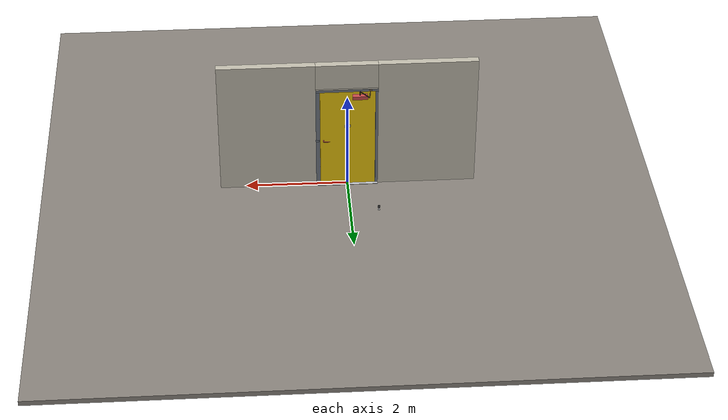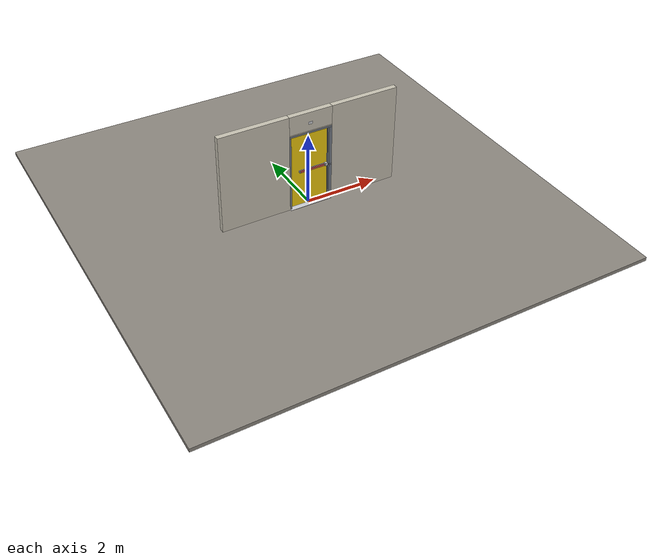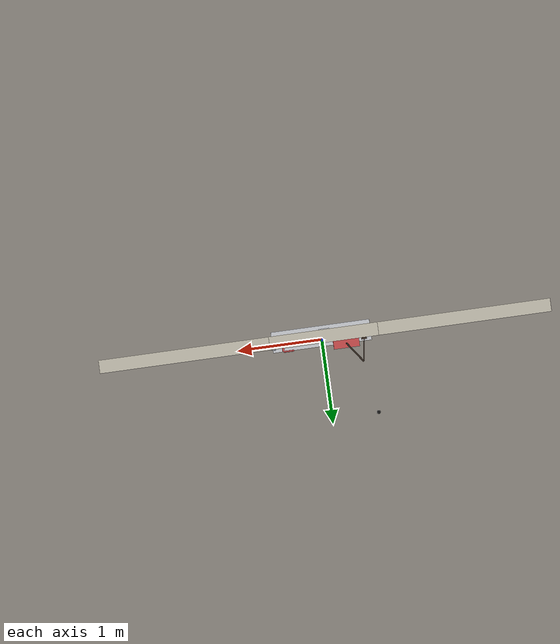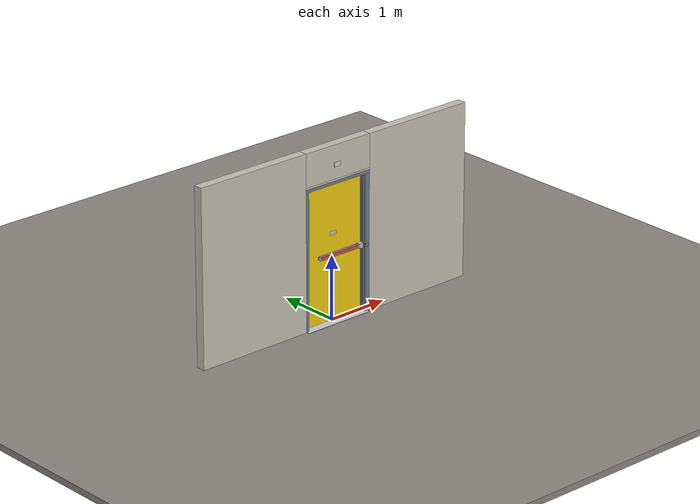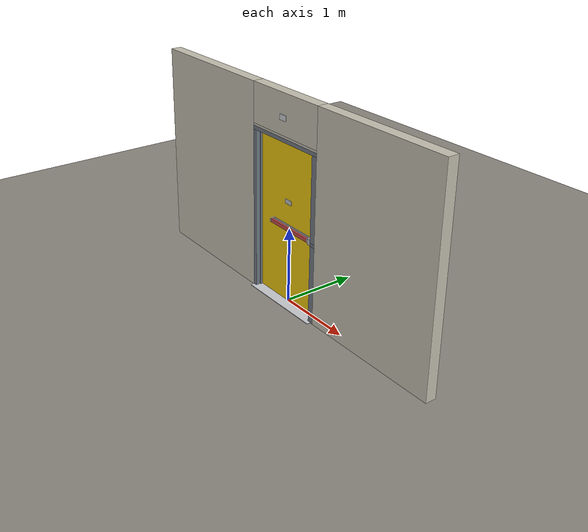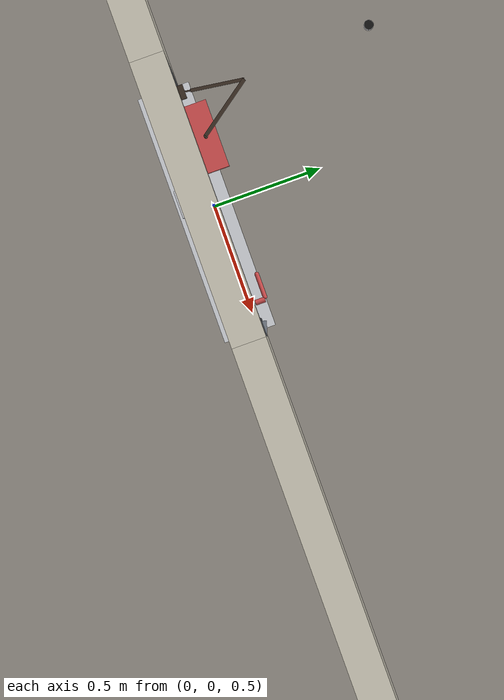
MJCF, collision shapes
<?xml version="1.0" ?>
<mujoco model="db0548_swing_single_full">
  <compiler angle="radian" meshdir="../../hardware" texturedir="../../textures" autolimits="true" inertiafromgeom="false"/>
  <option timestep="0.002" integrator="implicitfast" cone="elliptic" impratio="10" noslip_iterations="3">
    <flag multiccd="enable"/>
  </option>
  <size memory="16M"/>
  <default>
    <geom condim="4" solref="0.005 1" solimp="0.95 0.99 0.001"/>
    <joint solreflimit="0.005 1" solimplimit="0.95 0.99 0.001"/>
    <tendon solreflimit="0.005 1"/>
    <equality solref="0.002 1"/>
  </default>
  <visual>
    <headlight ambient="0.4 0.4 0.4" diffuse="0.7 0.7 0.7" specular="0.2 0.2 0.2"/>
    <quality shadowsize="4096"/>
    <map znear="0.01" zfar="60"/>
  </visual>
  <asset>
    <mesh name="closer_body_fdc4667657" file="closer_body_fdc4667657.obj"/>
    <mesh name="exit_sign_a6449bfa2c" file="exit_sign_a6449bfa2c.obj"/>
    <mesh name="hinge_e22b26c0c1" file="hinge_e22b26c0c1.obj"/>
    <mesh name="hinge_jamb_e1d088f8dc" file="hinge_jamb_e1d088f8dc.obj"/>
    <mesh name="lever_9f02b544cf" file="lever_9f02b544cf.obj"/>
    <mesh name="touchbar_pad_53c3bea3f4" file="touchbar_pad_53c3bea3f4.obj"/>
    <material name="mat_floor" rgba="0.55 0.53 0.5 1" specular="0.2" shininess="0.15" reflectance="0"/>
    <material name="mat_wall" rgba="0.78 0.76 0.7 1" specular="0.2" shininess="0.1" reflectance="0"/>
    <material name="mat_leaf" rgba="0.95 0.8 0.05 1" specular="0.23" shininess="0.59" reflectance="0.02"/>
    <material name="mat_hinge" rgba="0.65 0.66 0.68 1" specular="0.74" shininess="0.5" reflectance="0.36"/>
    <material name="mat_op_stainless" rgba="0.75 0.76 0.77 1" specular="0.8" shininess="0.65" reflectance="0.4"/>
    <material name="mat_op_nickel_satin" rgba="0.72 0.7 0.66 1" specular="0.8" shininess="0.65" reflectance="0.4"/>
    <material name="mat_trim" rgba="0.85 0.66 0.3 1" specular="0.8" shininess="0.75" reflectance="0.4"/>
    <material name="mat_bolt" rgba="0.75 0.76 0.77 1" specular="0.8" shininess="0.65" reflectance="0.4"/>
    <material name="mat_frame" rgba="0.45 0.48 0.52 1" specular="0.32" shininess="0.6" reflectance="0.08"/>
    <material name="mat_seal" rgba="0.1 0.1 0.1 1" specular="0.2" shininess="0.1" reflectance="0"/>
    <material name="mat_threshold" rgba="0.8 0.81 0.83 1" specular="0.8" shininess="0.6" reflectance="0.4"/>
    <material name="mat_closer" rgba="0.22 0.17 0.13 1" specular="0.8" shininess="0.6" reflectance="0.4"/>
    <material name="mat_exit_sign" rgba="0.85 0.1 0.1 1" specular="0.2" shininess="0.6" reflectance="0"/>
    <material name="mat_sign_bracket" rgba="0.8 0.81 0.83 1" specular="0.8" shininess="0.6" reflectance="0.4"/>
    <material name="mat_sign" rgba="0.75 0.76 0.77 1" specular="0.8" shininess="0.65" reflectance="0.4"/>
    <material name="mat_bumper_stop" rgba="0.08 0.08 0.08 1" specular="0.2" shininess="0.1" reflectance="0"/>
    <material name="mat_stop_base" rgba="0.9 0.9 0.92 1" specular="0.8" shininess="0.9" reflectance="0.4"/>
    <texture name="skybox" type="skybox" builtin="gradient" rgb1="0.6 0.7 0.85" rgb2="0.9 0.92 0.95" width="256" height="256"/>
  </asset>
  <worldbody>
    <light name="sun" pos="1.5 -2.5 4" dir="-0.3 0.5 -0.8" directional="true" diffuse="0.8 0.8 0.8" specular="0.3 0.3 0.3" castshadow="true"/>
    <light name="fill" pos="-1.5 2.5 3" dir="0.3 -0.5 -0.7" directional="true" diffuse="0.35 0.35 0.4" castshadow="false"/>
    <camera name="robot_view" pos="0 -2.681312 1.812087" xyaxes="1 0 0 0 0.26963 0.962964" fovy="52"/>
    <camera name="far_view" pos="0 2.594313 1.812087" xyaxes="-1 0 0 0 -0.26963 0.962964" fovy="52"/>
    <camera name="iso" pos="2.004737 -2.259262 2.234138" xyaxes="0.741536 0.670913 0 -0.242917 0.268487 0.932151" fovy="46"/>
    <camera name="detail_handle" pos="0.548 -0.723 1.32" xyaxes="0.97561 0.219512 0 -0.070934 0.315262 0.94635" fovy="38"/>
    <geom name="floor" type="box" size="6 6 0.05" pos="0 0 -0.05" material="mat_floor" group="0" contype="1" conaffinity="1" friction="0.8 0.005 0.0001" density="2400"/>
    <geom name="wall_left" type="box" size="0.9565 0.0725 1.3735" pos="-1.5435 -0.0435 1.3735" material="mat_wall" group="0" contype="1" conaffinity="1" friction="0.6 0.005 0.0001" density="800"/>
    <geom name="wall_right" type="box" size="0.9415 0.0725 1.3735" pos="1.5585 -0.0435 1.3735" material="mat_wall" group="0" contype="1" conaffinity="1" friction="0.6 0.005 0.0001" density="800"/>
    <geom name="wall_header" type="box" size="0.602 0.0725 0.26" pos="0.015 -0.0435 2.487" material="mat_wall" group="0" contype="1" conaffinity="1" friction="0.6 0.005 0.0001" density="800"/>
    <geom name="hinge_0_jamb" type="mesh" mesh="hinge_jamb_e1d088f8dc" pos="-0.534 0.029 0.259" quat="0 1 0 0" material="mat_hinge" group="1" contype="0" conaffinity="0" density="7850"/>
    <geom name="hinge_1_jamb" type="mesh" mesh="hinge_jamb_e1d088f8dc" pos="-0.534 0.029 0.827" quat="0 1 0 0" material="mat_hinge" group="1" contype="0" conaffinity="0" density="7850"/>
    <geom name="hinge_2_jamb" type="mesh" mesh="hinge_jamb_e1d088f8dc" pos="-0.534 0.029 1.395" quat="0 1 0 0" material="mat_hinge" group="1" contype="0" conaffinity="0" density="7850"/>
    <geom name="hinge_3_jamb" type="mesh" mesh="hinge_jamb_e1d088f8dc" pos="-0.534 0.029 1.963" quat="0 1 0 0" material="mat_hinge" group="1" contype="0" conaffinity="0" density="7850"/>
    <geom name="jamb_hinge" type="box" size="0.025 0.0725 1.0735" pos="-0.562 -0.0435 1.0735" material="mat_frame" group="0" contype="1" conaffinity="1" friction="0.6 0.005 0.0001" density="300"/>
    <geom name="strike_1040_wall_n" type="box" size="0.04 0.0305 0.02" pos="0.577 -0.0855 1.04" material="mat_frame" group="0" contype="1" conaffinity="1" friction="0.6 0.005 0.0001" density="300"/>
    <geom name="strike_1040_wall_p" type="box" size="0.04 0.008 0.02" pos="0.577 -0.025 1.04" material="mat_frame" group="0" contype="1" conaffinity="1" friction="0.6 0.005 0.0001" density="300"/>
    <geom name="strike_1040_ramp" type="box" size="0.04 0.034482 0.02" pos="0.585281 0.0044 1.04" quat="0.989198 0 0 -0.146587" material="mat_frame" group="0" contype="1" conaffinity="1" friction="0.12 0.005 0.0001" density="300"/>
    <geom name="strike_1040_back" type="box" size="0.0285 0.011 0.02" pos="0.5885 -0.044 1.04" material="mat_frame" group="0" contype="1" conaffinity="1" friction="0.6 0.005 0.0001" density="300"/>
    <geom name="jamb_strike_0" type="box" size="0.04 0.0725 0.51" pos="0.577 -0.0435 0.51" material="mat_frame" group="0" contype="1" conaffinity="1" friction="0.6 0.005 0.0001" density="300"/>
    <geom name="jamb_strike_1" type="box" size="0.04 0.0725 0.5435" pos="0.577 -0.0435 1.6035" material="mat_frame" group="0" contype="1" conaffinity="1" friction="0.6 0.005 0.0001" density="300"/>
    <geom name="jamb_head" type="box" size="0.602 0.0725 0.025" pos="0.015 -0.0435 2.172" material="mat_frame" group="0" contype="1" conaffinity="1" friction="0.6 0.005 0.0001" density="300"/>
    <geom name="head_stud" type="box" size="0.602 0.0725 0.015" pos="0.015 -0.0435 2.212" material="mat_wall" group="0" contype="1" conaffinity="1" friction="0.6 0.005 0.0001" density="500"/>
    <geom name="stop_hinge" type="box" size="0.0055 0.016 1.0735" pos="-0.5315 -0.0385 1.0735" material="mat_frame" group="0" contype="1" conaffinity="1" friction="0.6 0.005 0.0001" density="300"/>
    <geom name="stop_strike" type="box" size="0.0055 0.016 0.49625" pos="0.5315 -0.0385 0.49625" material="mat_frame" group="0" contype="1" conaffinity="1" friction="0.6 0.005 0.0001" density="300"/>
    <geom name="stop_strike_1" type="box" size="0.0055 0.016 0.52975" pos="0.5315 -0.0385 1.61725" material="mat_frame" group="0" contype="1" conaffinity="1" friction="0.6 0.005 0.0001" density="300"/>
    <geom name="stop_head" type="box" size="0.537 0.016 0.0055" pos="0 -0.0385 2.1415" material="mat_frame" group="0" contype="1" conaffinity="1" friction="0.6 0.005 0.0001" density="300"/>
    <geom name="seal_hinge" type="box" size="0.004 0.0025 1.0735" pos="-0.534 -0.0245 1.0735" material="mat_seal" group="1" contype="0" conaffinity="0" density="1100"/>
    <geom name="seal_strike" type="box" size="0.004 0.0025 0.49625" pos="0.534 -0.0245 0.49625" material="mat_seal" group="1" contype="0" conaffinity="0" density="1100"/>
    <geom name="seal_strike_1" type="box" size="0.004 0.0025 0.52975" pos="0.534 -0.0245 1.61725" material="mat_seal" group="1" contype="0" conaffinity="0" density="1100"/>
    <geom name="seal_head" type="box" size="0.517 0.0025 0.008" pos="0 -0.0245 2.135" material="mat_seal" group="1" contype="0" conaffinity="0" density="1100"/>
    <geom name="threshold" type="box" size="0.587 0.1225 0.004" pos="0 -0.0435 0.004" material="mat_threshold" group="0" contype="1" conaffinity="1" friction="0.6 0.005 0.0001" density="2700"/>
    <geom name="closer_bracket" type="box" size="0.03 0.012 0.014" pos="-0.437 0.041 2.177" material="mat_closer" group="1" contype="0" conaffinity="0" density="2700"/>
    <geom name="exit_sign" type="mesh" mesh="exit_sign_a6449bfa2c" pos="0 -0.15 2.447" material="mat_exit_sign" group="2" contype="0" conaffinity="0" density="500"/>
    <geom name="exit_sign_bracket" type="box" size="0.05775 0.005 0.035" pos="0 -0.1205 2.447" material="mat_sign_bracket" group="2" contype="0" conaffinity="0" density="7850"/>
    <geom name="door_stop_base" type="cylinder" size="0.022 0.003" pos="-0.55 0.93595 0.003" material="mat_stop_base" group="0" contype="1" conaffinity="1" friction="0.6 0.005 0.0001" density="7850"/>
    <geom name="door_stop_post" type="cylinder" size="0.012 0.0245" pos="-0.55 0.93595 0.0305" material="mat_stop_base" group="0" contype="1" conaffinity="1" friction="0.6 0.005 0.0001" density="7850"/>
    <geom name="door_stop_bumper" type="cylinder" size="0.022 0.02" pos="-0.55 0.93595 0.075" material="mat_bumper_stop" group="0" contype="1" conaffinity="1" friction="0.6 0.005 0.0001" density="1100"/>
    <site name="approach_point" pos="0 -1.5 0" quat="1 0 0 0" size="0.05" rgba="0.2 0.9 0.2 0.5" group="4"/>
    <site name="goal_point" pos="0 1.5 0" quat="1 0 0 0" size="0.05" rgba="0.2 0.9 0.2 0.5" group="4"/>
    <site name="door_plane_center" pos="0 0 1.0735" quat="1 0 0 0" size="0.02" rgba="0.2 0.9 0.2 0.5" group="4"/>
    <body name="leaf" pos="-0.537 0 0">
      <inertial pos="0.491271 0.013011 1.271075" mass="59.218765" quat="0.525513 0.526126 0.459649 -0.485542" diaginertia="5.153001403 26.485443982 31.535288209"/>
      <joint name="leaf_hinge" type="hinge" axis="0 0 1" pos="0.003 0.029 0" limited="true" range="0 1.570796" solreflimit="0.02 1" damping="12.49954" frictionloss="2.952947" stiffness="13.025241" springref="-2.475194" armature="0.02"/>
      <geom name="leaf_slab" type="box" size="0.5335 0.022 1.067" pos="0.5365 0 1.076" material="mat_leaf" group="0" contype="1" conaffinity="1" friction="0.4 0.005 0.0001" density="1"/>
      <geom name="hinge_0" type="mesh" mesh="hinge_e22b26c0c1" pos="0.003 0.029 0.259" quat="0 1 0 0" material="mat_hinge" group="1" contype="0" conaffinity="0" density="7850"/>
      <geom name="hinge_1" type="mesh" mesh="hinge_e22b26c0c1" pos="0.003 0.029 0.827" quat="0 1 0 0" material="mat_hinge" group="1" contype="0" conaffinity="0" density="7850"/>
      <geom name="hinge_2" type="mesh" mesh="hinge_e22b26c0c1" pos="0.003 0.029 1.395" quat="0 1 0 0" material="mat_hinge" group="1" contype="0" conaffinity="0" density="7850"/>
      <geom name="hinge_3" type="mesh" mesh="hinge_e22b26c0c1" pos="0.003 0.029 1.963" quat="0 1 0 0" material="mat_hinge" group="1" contype="0" conaffinity="0" density="7850"/>
      <geom name="leaf_exit_device_rail" type="box" size="0.366775 0.006 0.025" pos="0.623225 -0.028 1.04" material="mat_op_stainless" group="0" contype="1" conaffinity="1" friction="0.6 0.005 0.0001" density="3000"/>
      <geom name="leaf_exit_device_rail_end_n" type="box" size="0.01 0.0325 0.025" pos="0.26645 -0.0545 1.04" material="mat_op_stainless" group="0" contype="1" conaffinity="1" friction="0.6 0.005 0.0001" density="3000"/>
      <geom name="leaf_exit_device_rail_end_p" type="box" size="0.01 0.0325 0.025" pos="0.98 -0.0545 1.04" material="mat_op_stainless" group="0" contype="1" conaffinity="1" friction="0.6 0.005 0.0001" density="3000"/>
      <geom name="leaf_exit_device_case" type="box" size="0.034 0.034125 0.0375" pos="1.024 -0.056125 1.04" material="mat_op_stainless" group="0" contype="1" conaffinity="1" friction="0.6 0.005 0.0001" density="3000"/>
      <geom name="closer_body" type="mesh" mesh="closer_body_fdc4667657" pos="0.3 0.022 2.054" quat="-0.707107 0.707107 0 0" material="mat_closer" group="1" contype="0" conaffinity="0" density="2000"/>
      <geom name="closer_body_col" type="box" size="0.145 0.05 0.035" pos="0.3 0.072 2.054" material="mat_closer" group="3" contype="1" conaffinity="1" rgba="0.8 0.3 0.3 0.25" friction="0.6 0.005 0.0001" density="2000"/>
      <geom name="closer_pinion_shaft" type="cylinder" size="0.008 0.0615" pos="0.3 0.072 2.1155" material="mat_closer" group="1" contype="0" conaffinity="0" density="2700"/>
      <geom name="sign_push" type="box" size="0.06 0.001 0.03" pos="0.5365 -0.023 1.359" material="mat_sign" group="2" contype="0" conaffinity="0" density="7900"/>
      <geom name="sign_pull" type="box" size="0.06 0.001 0.03" pos="0.5365 0.023 1.359" material="mat_sign" group="2" contype="0" conaffinity="0" density="7900"/>
      <site name="leaf_edge_mid" pos="1.07 0 1.067" quat="1 0 0 0" size="0.02" rgba="0.2 0.9 0.2 0.5" group="4"/>
      <body name="leaf_exit_device" pos="0.623225 -0.022 1.04">
        <inertial pos="0 -0.05 0" mass="5.569155" quat="0 0 0.707107 0.707107" diaginertia="0.001357482 0.219807588 0.220329696"/>
        <joint name="leaf_exit_device_slide" type="slide" axis="0 1 0" limited="true" range="0 0.016" damping="165.686282" frictionloss="0.5" stiffness="1200" springref="-0.015" armature="0.15"/>
        <geom name="leaf_exit_device_pad" type="mesh" mesh="touchbar_pad_53c3bea3f4" pos="0 0 0" quat="0.707107 0.707107 0 0" material="mat_op_stainless" group="1" contype="0" conaffinity="0" density="3000"/>
        <geom name="leaf_exit_device_pad_col" type="box" size="0.343775 0.015 0.0225" pos="0 -0.05 0" material="mat_op_stainless" group="3" contype="1" conaffinity="1" rgba="0.8 0.3 0.3 0.25" friction="0.8 0.01 0.0001" density="3000"/>
        <site name="leaf_exit_device_push" pos="0 -0.065 0" quat="1 0 0 0" size="0.015" rgba="0.2 0.9 0.2 0.5" group="4"/>
      </body>
      <body name="leaf_far_lever" pos="1.005 0 1.04">
        <inertial pos="-0.02707 0.051489 0" mass="0.515728" quat="0.245847 0 0 0.969309" diaginertia="0.000250139 0.001100166 0.001260724"/>
        <joint name="leaf_far_lever_hinge" type="hinge" axis="0 -1 0" limited="true" range="0 0.96" damping="0.23274" frictionloss="0.048" stiffness="1.2" springref="-0.458333" armature="0.01"/>
        <geom name="leaf_far_lever_spindle" type="cylinder" size="0.006 0.03" pos="0 0 0" quat="0.707107 -0.707107 0 0" material="mat_op_nickel_satin" group="1" contype="0" conaffinity="0" density="7850"/>
        <geom name="leaf_far_lever_lever_p" type="mesh" mesh="lever_9f02b544cf" pos="0 0.022 0" quat="-0.707107 0.707107 0 0" material="mat_op_nickel_satin" group="1" contype="0" conaffinity="0" density="3000"/>
        <geom name="leaf_far_lever_lever_col_p" type="capsule" size="0.0095 0.053" pos="-0.0625 0.077 0" quat="0.707107 0 -0.707107 0" material="mat_op_nickel_satin" group="3" contype="1" conaffinity="1" rgba="0.8 0.3 0.3 0.25" friction="0.7 0.01 0.0001" density="3000"/>
        <geom name="leaf_far_lever_hub_col_p" type="cylinder" size="0.012 0.022" pos="0 0.052 0" quat="0.707107 -0.707107 0 0" material="mat_op_nickel_satin" group="3" contype="1" conaffinity="1" rgba="0.8 0.3 0.3 0.25" friction="0.6 0.005 0.0001" density="3000"/>
        <site name="leaf_far_lever_grip_p" pos="-0.1 0.077 0" quat="1 0 0 0" size="0.012" rgba="0.2 0.9 0.2 0.5" group="4"/>
      </body>
      <body name="leaf_latch_bolt" pos="1.07 -0.044 1.04">
        <inertial pos="-0.0055 0 0" mass="0.102826" quat="0.92388 -0.382683 0 0" diaginertia="0.000004365 0.000018287 0.000018287"/>
        <joint name="leaf_latch_bolt_slide" type="slide" axis="-1 0 0" limited="true" range="0 0.019" damping="2" frictionloss="0.3" stiffness="800" springref="-0.01" armature="0.1"/>
        <geom name="leaf_latch_bolt_capsule" type="capsule" size="0.0095 0.015" pos="-0.0055 0 0" quat="0.707107 0 0.707107 0" material="mat_bolt" group="0" contype="1" conaffinity="1" friction="0.2 0.005 0.0001" density="8500"/>
      </body>
      <body name="closer_arm_main" pos="0.3 0.072 2.177" quat="0.454107 0 0 0.890947">
        <inertial pos="0.14 0 0" mass="0.12096" quat="1 0 0 0" diaginertia="0.000003588 0.00079128 0.000792852"/>
        <joint name="closer_pinion" type="hinge" axis="0 0 1" limited="false" damping="0.01" armature="0.002"/>
        <geom name="closer_arm_main_geom" type="box" size="0.14 0.008 0.005" pos="0.14 0 0" material="mat_closer" group="1" contype="0" conaffinity="0" density="2700"/>
        <body name="closer_arm_fore" pos="0.28 0 0" quat="-0.373215 0 0 -0.927745">
          <inertial pos="0.128088 0 0" mass="0.076531" quat="1 0 0 0" diaginertia="0.000001771 0.000437665 0.000438201"/>
          <joint name="closer_elbow" type="hinge" axis="0 0 1" limited="false" damping="0.01" armature="0.002"/>
          <geom name="closer_arm_fore_geom" type="box" size="0.1125 0.007 0.004" pos="0.1125 0 0" material="mat_closer" group="1" contype="0" conaffinity="0" density="2700"/>
          <geom name="closer_fore_neck" type="box" size="0.0175 0.003 0.003" pos="0.2425 0 0" material="mat_closer" group="1" contype="0" conaffinity="0" density="2700"/>
          <geom name="closer_fore_pivot" type="cylinder" size="0.005 0.012" pos="0.26 0 0" material="mat_closer" group="1" contype="0" conaffinity="0" density="2700"/>
        </body>
      </body>
    </body>
  </worldbody>
  <tendon>
    <fixed name="leaf_latch_bolt_coupling" limited="true" range="0 10">
      <joint joint="leaf_latch_bolt_slide" coef="1"/>
      <joint joint="leaf_exit_device_slide" coef="-1.357143"/>
      <joint joint="leaf_far_lever_hinge" coef="-0.020879"/>
    </fixed>
  </tendon>
  <equality>
    <connect name="closer_arm_connect" body1="closer_arm_fore" body2="world" anchor="0.26 0 0" active="true"/>
  </equality>
  <contact>
    <exclude body1="closer_arm_main" body2="leaf"/>
    <exclude body1="closer_arm_fore" body2="leaf"/>
    <exclude body1="closer_arm_main" body2="closer_arm_fore"/>
  </contact>
  <sensor>
    <jointpos name="leaf_hinge_pos" joint="leaf_hinge"/>
    <jointvel name="leaf_hinge_vel" joint="leaf_hinge"/>
    <jointpos name="leaf_exit_device_slide_pos" joint="leaf_exit_device_slide"/>
    <jointvel name="leaf_exit_device_slide_vel" joint="leaf_exit_device_slide"/>
    <jointpos name="leaf_far_lever_hinge_pos" joint="leaf_far_lever_hinge"/>
    <jointvel name="leaf_far_lever_hinge_vel" joint="leaf_far_lever_hinge"/>
    <jointpos name="leaf_latch_bolt_slide_pos" joint="leaf_latch_bolt_slide"/>
    <jointvel name="leaf_latch_bolt_slide_vel" joint="leaf_latch_bolt_slide"/>
  </sensor>
</mujoco>
